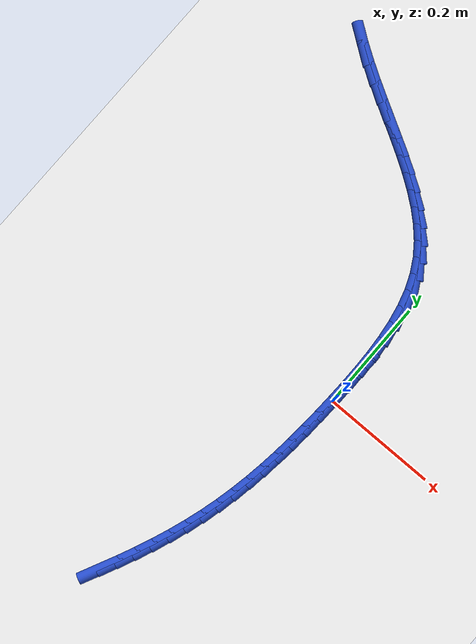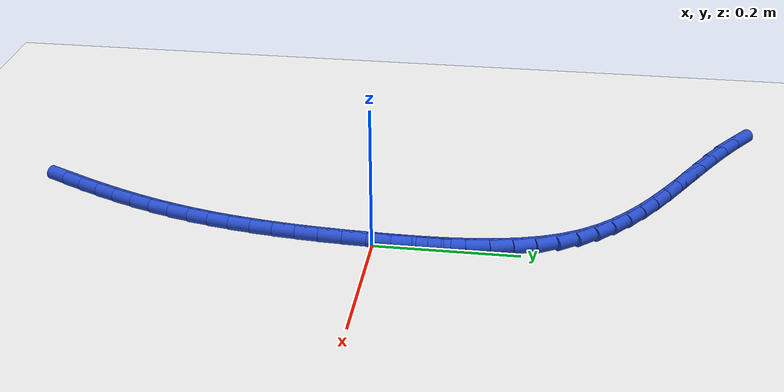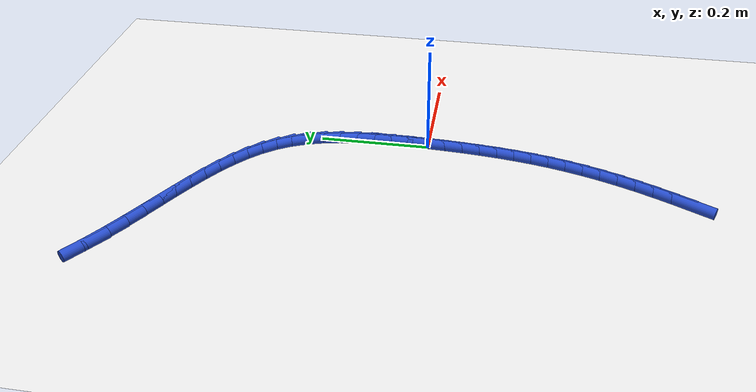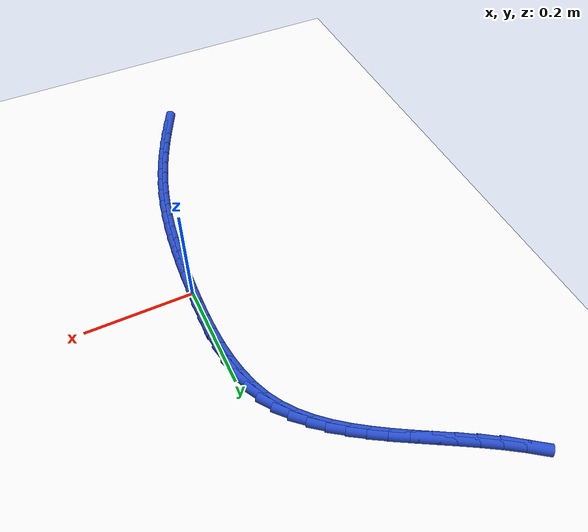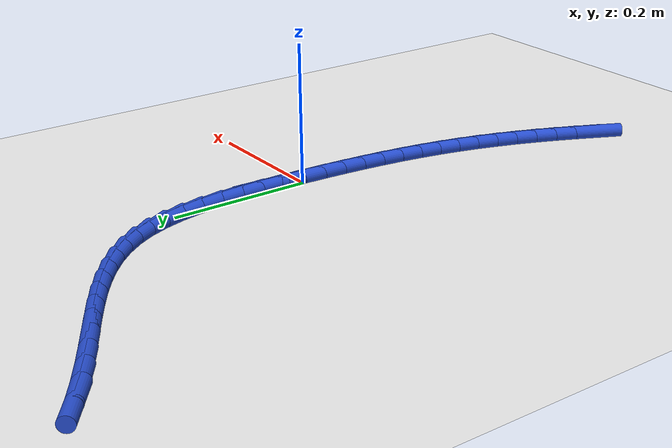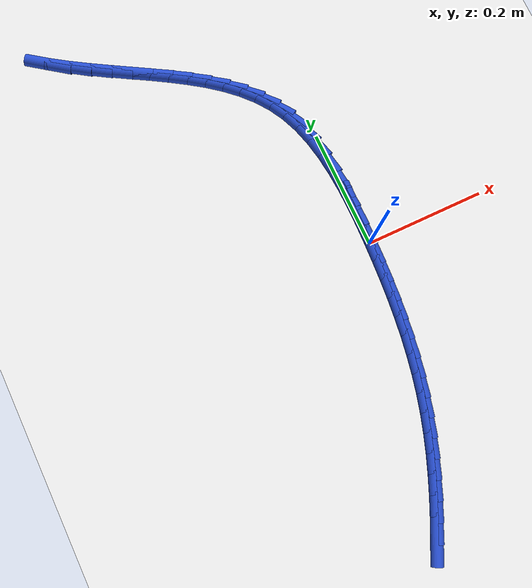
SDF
<sdf version="1.6">
 <world name="default">
  <model name="ground_plane">
   <static>1</static>
   <link name="link">
    <collision name="collision">
     <geometry><plane><normal>0 0 1</normal><size>100 100</size></plane></geometry>
     <surface><friction><ode><mu>100</mu><mu2>50</mu2></ode></friction></surface>
    </collision>
    <visual name="visual">
     <cast_shadows>0</cast_shadows>
     <geometry><plane><normal>0 0 1</normal><size>100 100</size></plane></geometry>
     <material>
      <script><uri>file://media/materials/scripts/gazebo.material</uri><name>Gazebo/WhiteGlow</name></script>
     </material>
    </visual>
   </link>
  </model>
  <model name="line">
   <link name="link_0">
    <pose>-3.9871534893154426e-17 -2.0816681711721685e-17 0.01 0 1.57 1.538342685505387</pose>
    <collision name="collision">
     <geometry><cylinder><radius>0.01</radius><length>0.08</length></cylinder></geometry>
    </collision>
    <visual name="visual">
     <material>
      <script><name>Gazebo/Blue</name><uri>file://media/materials/scripts/gazebo.material</uri></script>
     </material>
     <geometry><cylinder><radius>0.01</radius><length>0.08</length></cylinder></geometry>
    </visual>
   </link>
   <link name="link_1">
    <pose>0.001082015016165012 0.03332862116855559 0.01 0 1.57 1.56089797634101</pose>
    <collision name="collision">
     <geometry><cylinder><radius>0.01</radius><length>0.08</length></cylinder></geometry>
    </collision>
    <visual name="visual">
     <material>
      <script><name>Gazebo/Blue</name><uri>file://media/materials/scripts/gazebo.material</uri></script>
     </material>
     <geometry><cylinder><radius>0.01</radius><length>0.08</length></cylinder></geometry>
    </visual>
   </link>
   <link name="link_2">
    <pose>0.0014136496515058847 0.0668315574327073 0.01 0 1.57 -1.5482920272042044</pose>
    <collision name="collision">
     <geometry><cylinder><radius>0.01</radius><length>0.08</length></cylinder></geometry>
    </collision>
    <visual name="visual">
     <material>
      <script><name>Gazebo/Blue</name><uri>file://media/materials/scripts/gazebo.material</uri></script>
     </material>
     <geometry><cylinder><radius>0.01</radius><length>0.08</length></cylinder></geometry>
    </visual>
   </link>
   <link name="link_3">
    <pose>0.0006632824911710362 0.10016920831925602 0.01 0 1.57 -1.504982040066577</pose>
    <collision name="collision">
     <geometry><cylinder><radius>0.01</radius><length>0.08</length></cylinder></geometry>
    </collision>
    <visual name="visual">
     <material>
      <script><name>Gazebo/Blue</name><uri>file://media/materials/scripts/gazebo.material</uri></script>
     </material>
     <geometry><cylinder><radius>0.01</radius><length>0.08</length></cylinder></geometry>
    </visual>
   </link>
   <link name="link_4">
    <pose>-0.0015007078796910735 0.13300197335500274 0.01 0 1.57 -1.449190964346713</pose>
    <collision name="collision">
     <geometry><cylinder><radius>0.01</radius><length>0.08</length></cylinder></geometry>
    </collision>
    <visual name="visual">
     <material>
      <script><name>Gazebo/Blue</name><uri>file://media/materials/scripts/gazebo.material</uri></script>
     </material>
     <geometry><cylinder><radius>0.01</radius><length>0.08</length></cylinder></geometry>
    </visual>
   </link>
   <link name="link_5">
    <pose>-0.005409942875931985 0.1649902520667484 0.01 0 1.57 -1.3788610137995028</pose>
    <collision name="collision">
     <geometry><cylinder><radius>0.01</radius><length>0.08</length></cylinder></geometry>
    </collision>
    <visual name="visual">
     <material>
      <script><name>Gazebo/Blue</name><uri>file://media/materials/scripts/gazebo.material</uri></script>
     </material>
     <geometry><cylinder><radius>0.01</radius><length>0.08</length></cylinder></geometry>
    </visual>
   </link>
   <link name="link_6">
    <pose>-0.011396043912403248 0.1957944439812939 0.01 0 1.57 -1.2915897562219265</pose>
    <collision name="collision">
     <geometry><cylinder><radius>0.01</radius><length>0.08</length></cylinder></geometry>
    </collision>
    <visual name="visual">
     <material>
      <script><name>Gazebo/Blue</name><uri>file://media/materials/scripts/gazebo.material</uri></script>
     </material>
     <geometry><cylinder><radius>0.01</radius><length>0.08</length></cylinder></geometry>
    </visual>
   </link>
   <link name="link_7">
    <pose>-0.019790632403956395 0.22507494862544022 0.01 0 1.57 -1.18502470711433</pose>
    <collision name="collision">
     <geometry><cylinder><radius>0.01</radius><length>0.08</length></cylinder></geometry>
    </collision>
    <visual name="visual">
     <material>
      <script><name>Gazebo/Blue</name><uri>file://media/materials/scripts/gazebo.material</uri></script>
     </material>
     <geometry><cylinder><radius>0.01</radius><length>0.08</length></cylinder></geometry>
    </visual>
   </link>
   <link name="link_8">
    <pose>-0.030925329765442967 0.25249216552598824 0.01 0 1.57 -1.0598615610531572</pose>
    <collision name="collision">
     <geometry><cylinder><radius>0.01</radius><length>0.08</length></cylinder></geometry>
    </collision>
    <visual name="visual">
     <material>
      <script><name>Gazebo/Blue</name><uri>file://media/materials/scripts/gazebo.material</uri></script>
     </material>
     <geometry><cylinder><radius>0.01</radius><length>0.08</length></cylinder></geometry>
    </visual>
   </link>
   <link name="link_9">
    <pose>-0.045085360770730214 0.27775147626223073 0.01 0 1.57 -0.9360327810155468</pose>
    <collision name="collision">
     <geometry><cylinder><radius>0.01</radius><length>0.08</length></cylinder></geometry>
    </collision>
    <visual name="visual">
     <material>
      <script><name>Gazebo/Blue</name><uri>file://media/materials/scripts/gazebo.material</uri></script>
     </material>
     <geometry><cylinder><radius>0.01</radius><length>0.08</length></cylinder></geometry>
    </visual>
   </link>
   <link name="link_10">
    <pose>-0.062162218842410674 0.30093998927848675 0.01 0 1.57 -0.8270121124530095</pose>
    <collision name="collision">
     <geometry><cylinder><radius>0.01</radius><length>0.08</length></cylinder></geometry>
    </collision>
    <visual name="visual">
     <material>
      <script><name>Gazebo/Blue</name><uri>file://media/materials/scripts/gazebo.material</uri></script>
     </material>
     <geometry><cylinder><radius>0.01</radius><length>0.08</length></cylinder></geometry>
    </visual>
   </link>
   <link name="link_11">
    <pose>-0.08184886702131684 0.3223372904024393 0.01 0 1.57 -0.7352734472264888</pose>
    <collision name="collision">
     <geometry><cylinder><radius>0.01</radius><length>0.08</length></cylinder></geometry>
    </collision>
    <visual name="visual">
     <material>
      <script><name>Gazebo/Blue</name><uri>file://media/materials/scripts/gazebo.material</uri></script>
     </material>
     <geometry><cylinder><radius>0.01</radius><length>0.08</length></cylinder></geometry>
    </visual>
   </link>
   <link name="link_12">
    <pose>-0.10383674887410213 0.34222443860865975 0.01 0 1.57 -0.6612122491124037</pose>
    <collision name="collision">
     <geometry><cylinder><radius>0.01</radius><length>0.08</length></cylinder></geometry>
    </collision>
    <visual name="visual">
     <material>
      <script><name>Gazebo/Blue</name><uri>file://media/materials/scripts/gazebo.material</uri></script>
     </material>
     <geometry><cylinder><radius>0.01</radius><length>0.08</length></cylinder></geometry>
    </visual>
   </link>
   <link name="link_13">
    <pose>-0.12781730796741975 0.36088249287171925 0.01 0 1.57 -0.604019672935559</pose>
    <collision name="collision">
     <geometry><cylinder><radius>0.01</radius><length>0.08</length></cylinder></geometry>
    </collision>
    <visual name="visual">
     <material>
      <script><name>Gazebo/Blue</name><uri>file://media/materials/scripts/gazebo.material</uri></script>
     </material>
     <geometry><cylinder><radius>0.01</radius><length>0.08</length></cylinder></geometry>
    </visual>
   </link>
   <link name="link_14">
    <pose>-0.15348198786792308 0.3785925121661891 0.01 0 1.57 -0.562390289282589</pose>
    <collision name="collision">
     <geometry><cylinder><radius>0.01</radius><length>0.08</length></cylinder></geometry>
    </collision>
    <visual name="visual">
     <material>
      <script><name>Gazebo/Blue</name><uri>file://media/materials/scripts/gazebo.material</uri></script>
     </material>
     <geometry><cylinder><radius>0.01</radius><length>0.08</length></cylinder></geometry>
    </visual>
   </link>
   <link name="link_15">
    <pose>-0.18052223214226554 0.3956355554666406 0.01 0 1.57 -0.5349807943799272</pose>
    <collision name="collision">
     <geometry><cylinder><radius>0.01</radius><length>0.08</length></cylinder></geometry>
    </collision>
    <visual name="visual">
     <material>
      <script><name>Gazebo/Blue</name><uri>file://media/materials/scripts/gazebo.material</uri></script>
     </material>
     <geometry><cylinder><radius>0.01</radius><length>0.08</length></cylinder></geometry>
    </visual>
   </link>
   <link name="link_16">
    <pose>-0.20862948435710033 0.41229268174764494 0.01 0 1.57 -0.5206485705988937</pose>
    <collision name="collision">
     <geometry><cylinder><radius>0.01</radius><length>0.08</length></cylinder></geometry>
    </collision>
    <visual name="visual">
     <material>
      <script><name>Gazebo/Blue</name><uri>file://media/materials/scripts/gazebo.material</uri></script>
     </material>
     <geometry><cylinder><radius>0.01</radius><length>0.08</length></cylinder></geometry>
    </visual>
   </link>
   <link name="link_17">
    <pose>-0.23749518807908096 0.4288449499837735 0.01 0 1.57 -0.5185467126453396</pose>
    <collision name="collision">
     <geometry><cylinder><radius>0.01</radius><length>0.08</length></cylinder></geometry>
    </collision>
    <visual name="visual">
     <material>
      <script><name>Gazebo/Blue</name><uri>file://media/materials/scripts/gazebo.material</uri></script>
     </material>
     <geometry><cylinder><radius>0.01</radius><length>0.08</length></cylinder></geometry>
    </visual>
   </link>
   <link name="link_18">
    <pose>-0.2668107868748606 0.4455734191495972 0.01 0 1.57 -0.5281381627532674</pose>
    <collision name="collision">
     <geometry><cylinder><radius>0.01</radius><length>0.08</length></cylinder></geometry>
    </collision>
    <visual name="visual">
     <material>
      <script><name>Gazebo/Blue</name><uri>file://media/materials/scripts/gazebo.material</uri></script>
     </material>
     <geometry><cylinder><radius>0.01</radius><length>0.08</length></cylinder></geometry>
    </visual>
   </link>
   <link name="link_19">
    <pose>-0.29626772431109266 0.46275914821968755 0.01 0 1.57 -0.5491650285958551</pose>
    <collision name="collision">
     <geometry><cylinder><radius>0.01</radius><length>0.08</length></cylinder></geometry>
    </collision>
    <visual name="visual">
     <material>
      <script><name>Gazebo/Blue</name><uri>file://media/materials/scripts/gazebo.material</uri></script>
     </material>
     <geometry><cylinder><radius>0.01</radius><length>0.08</length></cylinder></geometry>
    </visual>
   </link>
   <link name="link_20">
    <pose>-0.3255574439544306 0.48068319616861577 0.01 0 1.57 -0.5815873304614774</pose>
    <collision name="collision">
     <geometry><cylinder><radius>0.01</radius><length>0.08</length></cylinder></geometry>
    </collision>
    <visual name="visual">
     <material>
      <script><name>Gazebo/Blue</name><uri>file://media/materials/scripts/gazebo.material</uri></script>
     </material>
     <geometry><cylinder><radius>0.01</radius><length>0.08</length></cylinder></geometry>
    </visual>
   </link>
   <link name="link_21">
    <pose>-0.3543713893715276 0.49962662197095314 0.01 0 1.57 -0.625490948118242</pose>
    <collision name="collision">
     <geometry><cylinder><radius>0.01</radius><length>0.08</length></cylinder></geometry>
    </collision>
    <visual name="visual">
     <material>
      <script><name>Gazebo/Blue</name><uri>file://media/materials/scripts/gazebo.material</uri></script>
     </material>
     <geometry><cylinder><radius>0.01</radius><length>0.08</length></cylinder></geometry>
    </visual>
   </link>
   <link name="link_225">
    <pose>-0.1117136515366713 -0.4573892143204601 0.01 0 1.57 1.1165640023185743</pose>
    <collision name="collision">
     <geometry><cylinder><radius>0.01</radius><length>0.08</length></cylinder></geometry>
    </collision>
    <visual name="visual">
     <material>
      <script><name>Gazebo/Blue</name><uri>file://media/materials/scripts/gazebo.material</uri></script>
     </material>
     <geometry><cylinder><radius>0.01</radius><length>0.08</length></cylinder></geometry>
    </visual>
   </link>
   <link name="link_226">
    <pose>-0.09761429205531288 -0.42851398896134696 0.01 0 1.57 1.1411898566995946</pose>
    <collision name="collision">
     <geometry><cylinder><radius>0.01</radius><length>0.08</length></cylinder></geometry>
    </collision>
    <visual name="visual">
     <material>
      <script><name>Gazebo/Blue</name><uri>file://media/materials/scripts/gazebo.material</uri></script>
     </material>
     <geometry><cylinder><radius>0.01</radius><length>0.08</length></cylinder></geometry>
    </visual>
   </link>
   <link name="link_227">
    <pose>-0.0843133385159401 -0.39948178487710906 0.01 0 1.57 1.1682439135066263</pose>
    <collision name="collision">
     <geometry><cylinder><radius>0.01</radius><length>0.08</length></cylinder></geometry>
    </collision>
    <visual name="visual">
     <material>
      <script><name>Gazebo/Blue</name><uri>file://media/materials/scripts/gazebo.material</uri></script>
     </material>
     <geometry><cylinder><radius>0.01</radius><length>0.08</length></cylinder></geometry>
    </visual>
   </link>
   <link name="link_228">
    <pose>-0.07187906794149447 -0.3702799991015036 0.01 0 1.57 1.1977721508991557</pose>
    <collision name="collision">
     <geometry><cylinder><radius>0.01</radius><length>0.08</length></cylinder></geometry>
    </collision>
    <visual name="visual">
     <material>
      <script><name>Gazebo/Blue</name><uri>file://media/materials/scripts/gazebo.material</uri></script>
     </material>
     <geometry><cylinder><radius>0.01</radius><length>0.08</length></cylinder></geometry>
    </visual>
   </link>
   <link name="link_229">
    <pose>-0.06037975735491758 -0.34089602866828816 0.01 0 1.57 1.2298058058435124</pose>
    <collision name="collision">
     <geometry><cylinder><radius>0.01</radius><length>0.08</length></cylinder></geometry>
    </collision>
    <visual name="visual">
     <material>
      <script><name>Gazebo/Blue</name><uri>file://media/materials/scripts/gazebo.material</uri></script>
     </material>
     <geometry><cylinder><radius>0.01</radius><length>0.08</length></cylinder></geometry>
    </visual>
   </link>
   <link name="link_230">
    <pose>-0.04988368377915072 -0.31131727061121967 0.01 0 1.57 1.2643556107860046</pose>
    <collision name="collision">
     <geometry><cylinder><radius>0.01</radius><length>0.08</length></cylinder></geometry>
    </collision>
    <visual name="visual">
     <material>
      <script><name>Gazebo/Blue</name><uri>file://media/materials/scripts/gazebo.material</uri></script>
     </material>
     <geometry><cylinder><radius>0.01</radius><length>0.08</length></cylinder></geometry>
    </visual>
   </link>
   <link name="link_231">
    <pose>-0.04045912423713602 -0.28153112196405705 0.01 0 1.57 1.3013940291292319</pose>
    <collision name="collision">
     <geometry><cylinder><radius>0.01</radius><length>0.08</length></cylinder></geometry>
    </collision>
    <visual name="visual">
     <material>
      <script><name>Gazebo/Blue</name><uri>file://media/materials/scripts/gazebo.material</uri></script>
     </material>
     <geometry><cylinder><radius>0.01</radius><length>0.08</length></cylinder></geometry>
    </visual>
   </link>
   <link name="link_232">
    <pose>-0.03217397116743368 -0.25152492778424507 0.01 0 1.57 1.3393463257535132</pose>
    <collision name="collision">
     <geometry><cylinder><radius>0.01</radius><length>0.08</length></cylinder></geometry>
    </collision>
    <visual name="visual">
     <material>
      <script><name>Gazebo/Blue</name><uri>file://media/materials/scripts/gazebo.material</uri></script>
     </material>
     <geometry><cylinder><radius>0.01</radius><length>0.08</length></cylinder></geometry>
    </visual>
   </link>
   <link name="link_233">
    <pose>-0.02504586825476803 -0.22127924204505062 0.01 0 1.57 1.3749940997609322</pose>
    <collision name="collision">
     <geometry><cylinder><radius>0.01</radius><length>0.08</length></cylinder></geometry>
    </collision>
    <visual name="visual">
     <material>
      <script><name>Gazebo/Blue</name><uri>file://media/materials/scripts/gazebo.material</uri></script>
     </material>
     <geometry><cylinder><radius>0.01</radius><length>0.08</length></cylinder></geometry>
    </visual>
   </link>
   <link name="link_234">
    <pose>-0.018992804362407908 -0.1907611504398398 0.01 0 1.57 1.407722797366438</pose>
    <collision name="collision">
     <geometry><cylinder><radius>0.01</radius><length>0.08</length></cylinder></geometry>
    </collision>
    <visual name="visual">
     <material>
      <script><name>Gazebo/Blue</name><uri>file://media/materials/scripts/gazebo.material</uri></script>
     </material>
     <geometry><cylinder><radius>0.01</radius><length>0.08</length></cylinder></geometry>
    </visual>
   </link>
   <link name="link_235">
    <pose>-0.013921025196877176 -0.15993615158250132 0.01 0 1.57 1.437339251482921</pose>
    <collision name="collision">
     <geometry><cylinder><radius>0.01</radius><length>0.08</length></cylinder></geometry>
    </collision>
    <visual name="visual">
     <material>
      <script><name>Gazebo/Blue</name><uri>file://media/materials/scripts/gazebo.material</uri></script>
     </material>
     <geometry><cylinder><radius>0.01</radius><length>0.08</length></cylinder></geometry>
    </visual>
   </link>
   <link name="link_236">
    <pose>-0.009736776464699722 -0.12876974408692402 0.01 0 1.57 1.4637178122026655</pose>
    <collision name="collision">
     <geometry><cylinder><radius>0.01</radius><length>0.08</length></cylinder></geometry>
    </collision>
    <visual name="visual">
     <material>
      <script><name>Gazebo/Blue</name><uri>file://media/materials/scripts/gazebo.material</uri></script>
     </material>
     <geometry><cylinder><radius>0.01</radius><length>0.08</length></cylinder></geometry>
    </visual>
   </link>
   <link name="link_237">
    <pose>-0.006346303872399405 -0.09722742656699648 0.01 0 1.57 1.4867935047717975</pose>
    <collision name="collision">
     <geometry><cylinder><radius>0.01</radius><length>0.08</length></cylinder></geometry>
    </collision>
    <visual name="visual">
     <material>
      <script><name>Gazebo/Blue</name><uri>file://media/materials/scripts/gazebo.material</uri></script>
     </material>
     <geometry><cylinder><radius>0.01</radius><length>0.08</length></cylinder></geometry>
    </visual>
   </link>
   <link name="link_238">
    <pose>-0.0036558531265000454 -0.06527469763660679 0.01 0 1.57 1.5065535283628881</pose>
    <collision name="collision">
     <geometry><cylinder><radius>0.01</radius><length>0.08</length></cylinder></geometry>
    </collision>
    <visual name="visual">
     <material>
      <script><name>Gazebo/Blue</name><uri>file://media/materials/scripts/gazebo.material</uri></script>
     </material>
     <geometry><cylinder><radius>0.01</radius><length>0.08</length></cylinder></geometry>
    </visual>
   </link>
   <link name="link_239">
    <pose>-0.0015716699335256573 -0.032877055909645285 0.01 0 1.57 1.5230282313622685</pose>
    <collision name="collision">
     <geometry><cylinder><radius>0.01</radius><length>0.08</length></cylinder></geometry>
    </collision>
    <visual name="visual">
     <material>
      <script><name>Gazebo/Blue</name><uri>file://media/materials/scripts/gazebo.material</uri></script>
     </material>
     <geometry><cylinder><radius>0.01</radius><length>0.08</length></cylinder></geometry>
    </visual>
   </link>
   <link name="link_240">
    <pose>-2.9327668765732895e-17 1.457167719820518e-16 0.01 0 1.57 1.536282411994322</pose>
    <collision name="collision">
     <geometry><cylinder><radius>0.01</radius><length>0.08</length></cylinder></geometry>
    </collision>
    <visual name="visual">
     <material>
      <script><name>Gazebo/Blue</name><uri>file://media/materials/scripts/gazebo.material</uri></script>
     </material>
     <geometry><cylinder><radius>0.01</radius><length>0.08</length></cylinder></geometry>
    </visual>
   </link>
   <link name="link_241">
    <pose>0.0011529109675529636 0.033390971478440695 0.01 0 1.57 1.5464074919831337</pose>
    <collision name="collision">
     <geometry><cylinder><radius>0.01</radius><length>0.08</length></cylinder></geometry>
    </collision>
    <visual name="visual">
     <material>
      <script><name>Gazebo/Blue</name><uri>file://media/materials/scripts/gazebo.material</uri></script>
     </material>
     <geometry><cylinder><radius>0.01</radius><length>0.08</length></cylinder></geometry>
    </visual>
   </link>
   <link name="link_242">
    <pose>0.0019808172626094465 0.06733035991178762 0.01 0 1.57 1.5413854325688754</pose>
    <collision name="collision">
     <geometry><cylinder><radius>0.01</radius><length>0.08</length></cylinder></geometry>
    </collision>
    <visual name="visual">
     <material>
      <script><name>Gazebo/Blue</name><uri>file://media/materials/scripts/gazebo.material</uri></script>
     </material>
     <geometry><cylinder><radius>0.01</radius><length>0.08</length></cylinder></geometry>
    </visual>
   </link>
  </model>
 </world>
</sdf>
